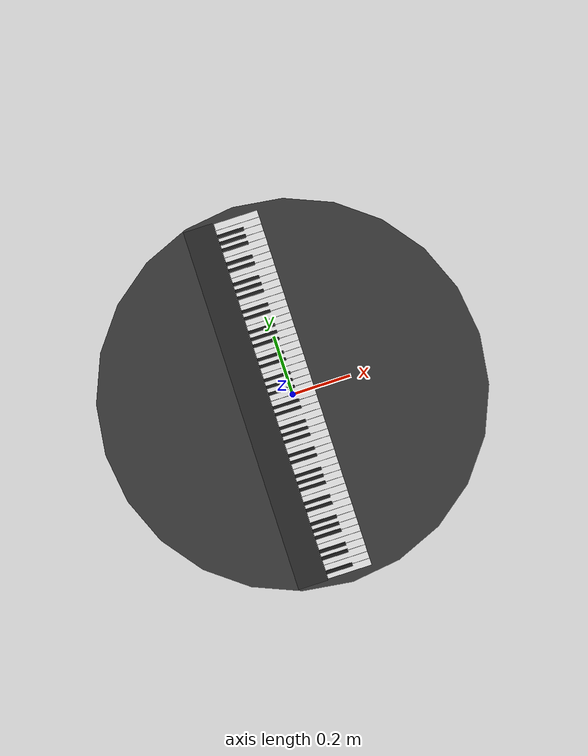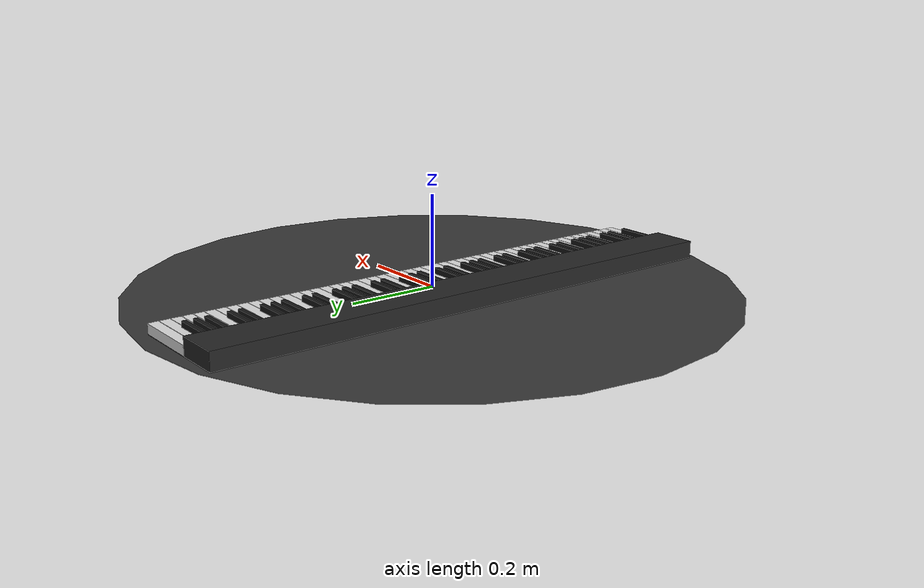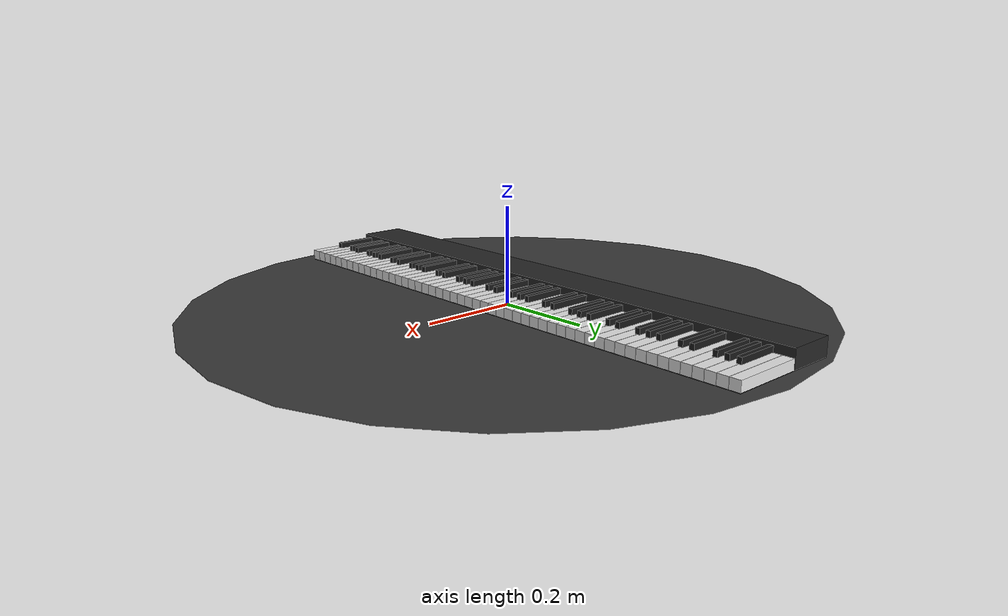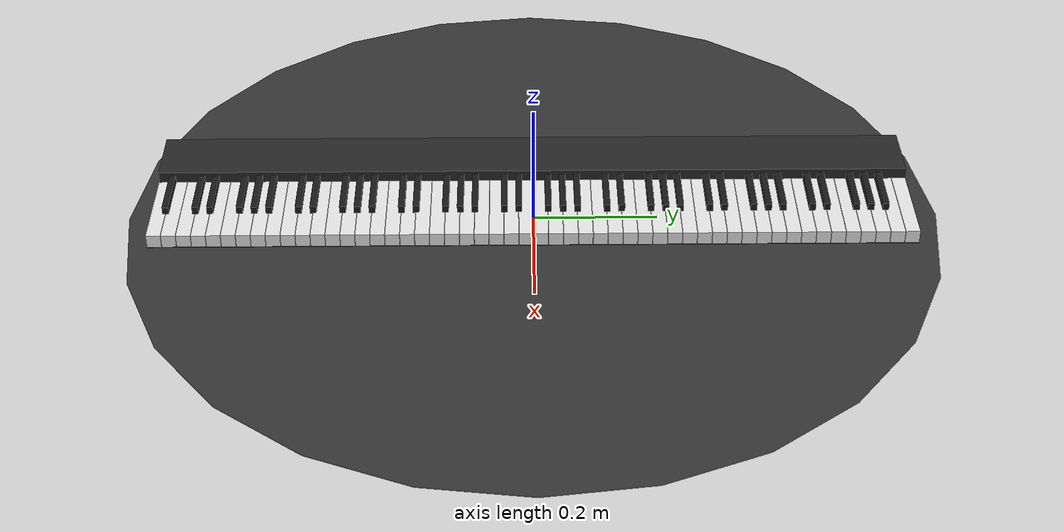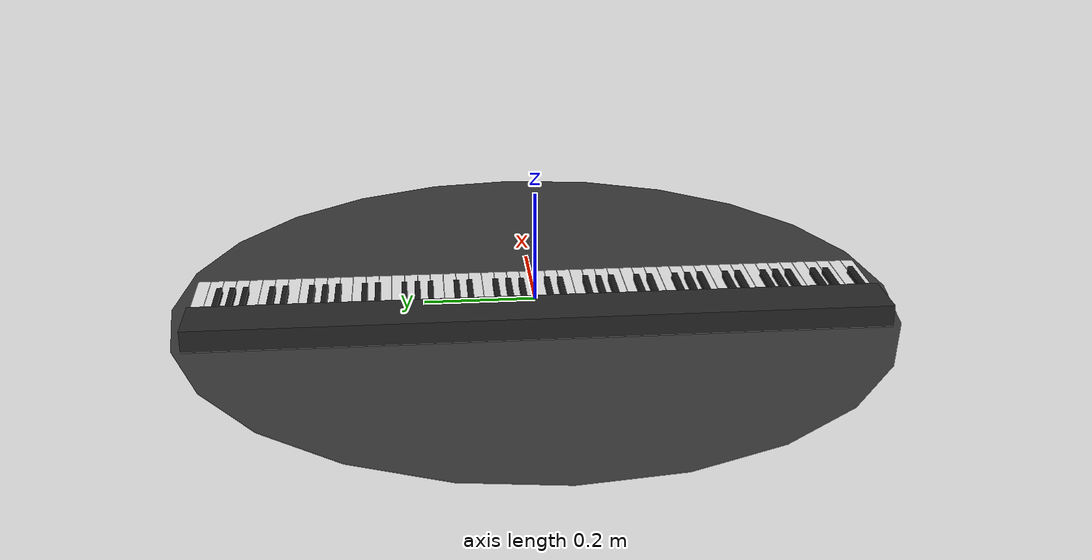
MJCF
<mujoco model="stage">
  <compiler autolimits="true" angle="radian"/>
  <option timestep="0.0050000000000000001"/>
  <visual>
    <global azimuth="180" elevation="-50"/>
    <map stiffness="400"/>
    <scale forcewidth="0.040000000000000001" contactwidth="0.20000000000000001" contactheight="0.029999999999999999"/>
  </visual>
  <statistic extent="0.59999999999999998" center="0.20000000000000001 0 0.29999999999999999"/>
  <default>
    <default class="/"/>
    <default class="piano/">
      <joint type="hinge" axis="0 1 0"/>
      <geom type="box" contype="0" conaffinity="1" solref="0.01 1"/>
      <site type="box" group="4" rgba="1 0 0 1"/>
      <general dyntype="none" gaintype="fixed" biastype="none" dynprm="1 0 0" gainprm="1 0 0" biasprm="0 0 0"/>
      <default class="piano/white_key">
        <joint pos="-0.074999999999999997 0 0" stiffness="2" range="0 0.066568163775823808" springref="-0.017453292519943295" armature="0.001" damping="0.050000000000000003"/>
        <geom size="0.074999999999999997 0.01125 0.01125" material="piano/white" mass="0.040000000000000001"/>
        <site size="0.074999999999999997 0.01125 0.01125"/>
        <general ctrlrange="0 0.066568163775823808"/>
      </default>
      <default class="piano/black_key">
        <joint pos="-0.044999999999999998 0 0" stiffness="2" range="0 0.088655881867437475" springref="-0.017453292519943295" armature="0.001" damping="0.050000000000000003"/>
        <geom size="0.044999999999999998 0.0050000000000000001 0.0089999999999999993" material="piano/black" mass="0.02"/>
        <site size="0.044999999999999998 0.0050000000000000001 0.0089999999999999993"/>
        <general ctrlrange="0 0.088655881867437475"/>
      </default>
    </default>
  </default>
  <asset>
    <texture name="skybox" type="skybox" builtin="gradient" rgb1="0.20000000000000001 0.20000000000000001 0.20000000000000001" rgb2="0 0 0" mark="random" markrgb="1 1 1" width="800" height="800"/>
    <material name="piano/white" class="piano/" rgba="0.90000000000000002 0.90000000000000002 0.90000000000000002 1"/>
    <material name="piano/black" class="piano/" rgba="0.10000000000000001 0.10000000000000001 0.10000000000000001 1"/>
  </asset>
  <worldbody>
    <light name="//unnamed_light_0" class="/" pos="0 0 1"/>
    <light name="//unnamed_light_1" class="/" directional="false" pos="0.29999999999999999 0 1" dir="0 0 -1"/>
    <geom name="//unnamed_geom_0" class="/" type="cylinder" contype="0" conaffinity="0" size="0.65000000000000002 0.001" rgba="0.10000000000000001 0.10000000000000001 0.10000000000000001 0.80000000000000004"/>
    <body name="piano/">
      <body name="piano/base" pos="-0.127 0 0.02">
        <geom name="piano//unnamed_geom_0" class="piano/" type="box" size="0.050000000000000003 0.61049999999999993 0.02" rgba="0.14999999999999999 0.14999999999999999 0.14999999999999999 1"/>
      </body>
      <body name="piano/white_key_0" pos="0 -0.59924999999999995 0.01125">
        <geom name="piano/white_key_geom_0" class="piano/white_key"/>
        <joint name="piano/white_joint_0" class="piano/white_key"/>
        <site name="piano/white_key_site_0" class="piano/white_key"/>
      </body>
      <body name="piano/black_key_1" pos="-0.029999999999999999 -0.58750000000000002 0.026000000000000002">
        <geom name="piano/black_key_geom_1" class="piano/black_key"/>
        <joint name="piano/black_joint_1" class="piano/black_key"/>
        <site name="piano/black_key_site_1" class="piano/black_key"/>
      </body>
      <body name="piano/white_key_2" pos="0 -0.57574999999999998 0.01125">
        <geom name="piano/white_key_geom_2" class="piano/white_key"/>
        <joint name="piano/white_joint_2" class="piano/white_key"/>
        <site name="piano/white_key_site_2" class="piano/white_key"/>
      </body>
      <body name="piano/white_key_3" pos="0 -0.55224999999999991 0.01125">
        <geom name="piano/white_key_geom_3" class="piano/white_key"/>
        <joint name="piano/white_joint_3" class="piano/white_key"/>
        <site name="piano/white_key_site_3" class="piano/white_key"/>
      </body>
      <body name="piano/black_key_4" pos="-0.029999999999999999 -0.53999999999999992 0.026000000000000002">
        <geom name="piano/black_key_geom_4" class="piano/black_key"/>
        <joint name="piano/black_joint_4" class="piano/black_key"/>
        <site name="piano/black_key_site_4" class="piano/black_key"/>
      </body>
      <body name="piano/white_key_5" pos="0 -0.52874999999999994 0.01125">
        <geom name="piano/white_key_geom_5" class="piano/white_key"/>
        <joint name="piano/white_joint_5" class="piano/white_key"/>
        <site name="piano/white_key_site_5" class="piano/white_key"/>
      </body>
      <body name="piano/black_key_6" pos="-0.029999999999999999 -0.51649999999999985 0.026000000000000002">
        <geom name="piano/black_key_geom_6" class="piano/black_key"/>
        <joint name="piano/black_joint_6" class="piano/black_key"/>
        <site name="piano/black_key_site_6" class="piano/black_key"/>
      </body>
      <body name="piano/white_key_7" pos="0 -0.50524999999999998 0.01125">
        <geom name="piano/white_key_geom_7" class="piano/white_key"/>
        <joint name="piano/white_joint_7" class="piano/white_key"/>
        <site name="piano/white_key_site_7" class="piano/white_key"/>
      </body>
      <body name="piano/white_key_8" pos="0 -0.48174999999999996 0.01125">
        <geom name="piano/white_key_geom_8" class="piano/white_key"/>
        <joint name="piano/white_joint_8" class="piano/white_key"/>
        <site name="piano/white_key_site_8" class="piano/white_key"/>
      </body>
      <body name="piano/black_key_9" pos="-0.029999999999999999 -0.46949999999999997 0.026000000000000002">
        <geom name="piano/black_key_geom_9" class="piano/black_key"/>
        <joint name="piano/black_joint_9" class="piano/black_key"/>
        <site name="piano/black_key_site_9" class="piano/black_key"/>
      </body>
      <body name="piano/white_key_10" pos="0 -0.45824999999999994 0.01125">
        <geom name="piano/white_key_geom_10" class="piano/white_key"/>
        <joint name="piano/white_joint_10" class="piano/white_key"/>
        <site name="piano/white_key_site_10" class="piano/white_key"/>
      </body>
      <body name="piano/black_key_11" pos="-0.029999999999999999 -0.4459999999999999 0.026000000000000002">
        <geom name="piano/black_key_geom_11" class="piano/black_key"/>
        <joint name="piano/black_joint_11" class="piano/black_key"/>
        <site name="piano/black_key_site_11" class="piano/black_key"/>
      </body>
      <body name="piano/white_key_12" pos="0 -0.43474999999999997 0.01125">
        <geom name="piano/white_key_geom_12" class="piano/white_key"/>
        <joint name="piano/white_joint_12" class="piano/white_key"/>
        <site name="piano/white_key_site_12" class="piano/white_key"/>
      </body>
      <body name="piano/black_key_13" pos="-0.029999999999999999 -0.42249999999999993 0.026000000000000002">
        <geom name="piano/black_key_geom_13" class="piano/black_key"/>
        <joint name="piano/black_joint_13" class="piano/black_key"/>
        <site name="piano/black_key_site_13" class="piano/black_key"/>
      </body>
      <body name="piano/white_key_14" pos="0 -0.41124999999999995 0.01125">
        <geom name="piano/white_key_geom_14" class="piano/white_key"/>
        <joint name="piano/white_joint_14" class="piano/white_key"/>
        <site name="piano/white_key_site_14" class="piano/white_key"/>
      </body>
      <body name="piano/white_key_15" pos="0 -0.38774999999999993 0.01125">
        <geom name="piano/white_key_geom_15" class="piano/white_key"/>
        <joint name="piano/white_joint_15" class="piano/white_key"/>
        <site name="piano/white_key_site_15" class="piano/white_key"/>
      </body>
      <body name="piano/black_key_16" pos="-0.029999999999999999 -0.37549999999999994 0.026000000000000002">
        <geom name="piano/black_key_geom_16" class="piano/black_key"/>
        <joint name="piano/black_joint_16" class="piano/black_key"/>
        <site name="piano/black_key_site_16" class="piano/black_key"/>
      </body>
      <body name="piano/white_key_17" pos="0 -0.36424999999999996 0.01125">
        <geom name="piano/white_key_geom_17" class="piano/white_key"/>
        <joint name="piano/white_joint_17" class="piano/white_key"/>
        <site name="piano/white_key_site_17" class="piano/white_key"/>
      </body>
      <body name="piano/black_key_18" pos="-0.029999999999999999 -0.35199999999999987 0.026000000000000002">
        <geom name="piano/black_key_geom_18" class="piano/black_key"/>
        <joint name="piano/black_joint_18" class="piano/black_key"/>
        <site name="piano/black_key_site_18" class="piano/black_key"/>
      </body>
      <body name="piano/white_key_19" pos="0 -0.34074999999999994 0.01125">
        <geom name="piano/white_key_geom_19" class="piano/white_key"/>
        <joint name="piano/white_joint_19" class="piano/white_key"/>
        <site name="piano/white_key_site_19" class="piano/white_key"/>
      </body>
      <body name="piano/white_key_20" pos="0 -0.31724999999999992 0.01125">
        <geom name="piano/white_key_geom_20" class="piano/white_key"/>
        <joint name="piano/white_joint_20" class="piano/white_key"/>
        <site name="piano/white_key_site_20" class="piano/white_key"/>
      </body>
      <body name="piano/black_key_21" pos="-0.029999999999999999 -0.30499999999999994 0.026000000000000002">
        <geom name="piano/black_key_geom_21" class="piano/black_key"/>
        <joint name="piano/black_joint_21" class="piano/black_key"/>
        <site name="piano/black_key_site_21" class="piano/black_key"/>
      </body>
      <body name="piano/white_key_22" pos="0 -0.29374999999999996 0.01125">
        <geom name="piano/white_key_geom_22" class="piano/white_key"/>
        <joint name="piano/white_joint_22" class="piano/white_key"/>
        <site name="piano/white_key_site_22" class="piano/white_key"/>
      </body>
      <body name="piano/black_key_23" pos="-0.029999999999999999 -0.28149999999999986 0.026000000000000002">
        <geom name="piano/black_key_geom_23" class="piano/black_key"/>
        <joint name="piano/black_joint_23" class="piano/black_key"/>
        <site name="piano/black_key_site_23" class="piano/black_key"/>
      </body>
      <body name="piano/white_key_24" pos="0 -0.27024999999999993 0.01125">
        <geom name="piano/white_key_geom_24" class="piano/white_key"/>
        <joint name="piano/white_joint_24" class="piano/white_key"/>
        <site name="piano/white_key_site_24" class="piano/white_key"/>
      </body>
      <body name="piano/black_key_25" pos="-0.029999999999999999 -0.2579999999999999 0.026000000000000002">
        <geom name="piano/black_key_geom_25" class="piano/black_key"/>
        <joint name="piano/black_joint_25" class="piano/black_key"/>
        <site name="piano/black_key_site_25" class="piano/black_key"/>
      </body>
      <body name="piano/white_key_26" pos="0 -0.24674999999999997 0.01125">
        <geom name="piano/white_key_geom_26" class="piano/white_key"/>
        <joint name="piano/white_joint_26" class="piano/white_key"/>
        <site name="piano/white_key_site_26" class="piano/white_key"/>
      </body>
      <body name="piano/white_key_27" pos="0 -0.22324999999999995 0.01125">
        <geom name="piano/white_key_geom_27" class="piano/white_key"/>
        <joint name="piano/white_joint_27" class="piano/white_key"/>
        <site name="piano/white_key_site_27" class="piano/white_key"/>
      </body>
      <body name="piano/black_key_28" pos="-0.029999999999999999 -0.21099999999999997 0.026000000000000002">
        <geom name="piano/black_key_geom_28" class="piano/black_key"/>
        <joint name="piano/black_joint_28" class="piano/black_key"/>
        <site name="piano/black_key_site_28" class="piano/black_key"/>
      </body>
      <body name="piano/white_key_29" pos="0 -0.19974999999999993 0.01125">
        <geom name="piano/white_key_geom_29" class="piano/white_key"/>
        <joint name="piano/white_joint_29" class="piano/white_key"/>
        <site name="piano/white_key_site_29" class="piano/white_key"/>
      </body>
      <body name="piano/black_key_30" pos="-0.029999999999999999 -0.18749999999999989 0.026000000000000002">
        <geom name="piano/black_key_geom_30" class="piano/black_key"/>
        <joint name="piano/black_joint_30" class="piano/black_key"/>
        <site name="piano/black_key_site_30" class="piano/black_key"/>
      </body>
      <body name="piano/white_key_31" pos="0 -0.17624999999999996 0.01125">
        <geom name="piano/white_key_geom_31" class="piano/white_key"/>
        <joint name="piano/white_joint_31" class="piano/white_key"/>
        <site name="piano/white_key_site_31" class="piano/white_key"/>
      </body>
      <body name="piano/white_key_32" pos="0 -0.15274999999999994 0.01125">
        <geom name="piano/white_key_geom_32" class="piano/white_key"/>
        <joint name="piano/white_joint_32" class="piano/white_key"/>
        <site name="piano/white_key_site_32" class="piano/white_key"/>
      </body>
      <body name="piano/black_key_33" pos="-0.029999999999999999 -0.14049999999999996 0.026000000000000002">
        <geom name="piano/black_key_geom_33" class="piano/black_key"/>
        <joint name="piano/black_joint_33" class="piano/black_key"/>
        <site name="piano/black_key_site_33" class="piano/black_key"/>
      </body>
      <body name="piano/white_key_34" pos="0 -0.12924999999999998 0.01125">
        <geom name="piano/white_key_geom_34" class="piano/white_key"/>
        <joint name="piano/white_joint_34" class="piano/white_key"/>
        <site name="piano/white_key_site_34" class="piano/white_key"/>
      </body>
      <body name="piano/black_key_35" pos="-0.029999999999999999 -0.11699999999999988 0.026000000000000002">
        <geom name="piano/black_key_geom_35" class="piano/black_key"/>
        <joint name="piano/black_joint_35" class="piano/black_key"/>
        <site name="piano/black_key_site_35" class="piano/black_key"/>
      </body>
      <body name="piano/white_key_36" pos="0 -0.10574999999999996 0.01125">
        <geom name="piano/white_key_geom_36" class="piano/white_key"/>
        <joint name="piano/white_joint_36" class="piano/white_key"/>
        <site name="piano/white_key_site_36" class="piano/white_key"/>
      </body>
      <body name="piano/black_key_37" pos="-0.029999999999999999 -0.093499999999999917 0.026000000000000002">
        <geom name="piano/black_key_geom_37" class="piano/black_key"/>
        <joint name="piano/black_joint_37" class="piano/black_key"/>
        <site name="piano/black_key_site_37" class="piano/black_key"/>
      </body>
      <body name="piano/white_key_38" pos="0 -0.082249999999999934 0.01125">
        <geom name="piano/white_key_geom_38" class="piano/white_key"/>
        <joint name="piano/white_joint_38" class="piano/white_key"/>
        <site name="piano/white_key_site_38" class="piano/white_key"/>
      </body>
      <body name="piano/white_key_39" pos="0 -0.058749999999999969 0.01125">
        <geom name="piano/white_key_geom_39" class="piano/white_key"/>
        <joint name="piano/white_joint_39" class="piano/white_key"/>
        <site name="piano/white_key_site_39" class="piano/white_key"/>
      </body>
      <body name="piano/black_key_40" pos="-0.029999999999999999 -0.046499999999999986 0.026000000000000002">
        <geom name="piano/black_key_geom_40" class="piano/black_key"/>
        <joint name="piano/black_joint_40" class="piano/black_key"/>
        <site name="piano/black_key_site_40" class="piano/black_key"/>
      </body>
      <body name="piano/white_key_41" pos="0 -0.035249999999999893 0.01125">
        <geom name="piano/white_key_geom_41" class="piano/white_key"/>
        <joint name="piano/white_joint_41" class="piano/white_key"/>
        <site name="piano/white_key_site_41" class="piano/white_key"/>
      </body>
      <body name="piano/black_key_42" pos="-0.029999999999999999 -0.022999999999999909 0.026000000000000002">
        <geom name="piano/black_key_geom_42" class="piano/black_key"/>
        <joint name="piano/black_joint_42" class="piano/black_key"/>
        <site name="piano/black_key_site_42" class="piano/black_key"/>
      </body>
      <body name="piano/white_key_43" pos="0 -0.011749999999999927 0.01125">
        <geom name="piano/white_key_geom_43" class="piano/white_key"/>
        <joint name="piano/white_joint_43" class="piano/white_key"/>
        <site name="piano/white_key_site_43" class="piano/white_key"/>
      </body>
      <body name="piano/white_key_44" pos="0 0.011750000000000038 0.01125">
        <geom name="piano/white_key_geom_44" class="piano/white_key"/>
        <joint name="piano/white_joint_44" class="piano/white_key"/>
        <site name="piano/white_key_site_44" class="piano/white_key"/>
      </body>
      <body name="piano/black_key_45" pos="-0.029999999999999999 0.024000000000000021 0.026000000000000002">
        <geom name="piano/black_key_geom_45" class="piano/black_key"/>
        <joint name="piano/black_joint_45" class="piano/black_key"/>
        <site name="piano/black_key_site_45" class="piano/black_key"/>
      </body>
      <body name="piano/white_key_46" pos="0 0.035250000000000004 0.01125">
        <geom name="piano/white_key_geom_46" class="piano/white_key"/>
        <joint name="piano/white_joint_46" class="piano/white_key"/>
        <site name="piano/white_key_site_46" class="piano/white_key"/>
      </body>
      <body name="piano/black_key_47" pos="-0.029999999999999999 0.047500000000000098 0.026000000000000002">
        <geom name="piano/black_key_geom_47" class="piano/black_key"/>
        <joint name="piano/black_joint_47" class="piano/black_key"/>
        <site name="piano/black_key_site_47" class="piano/black_key"/>
      </body>
      <body name="piano/white_key_48" pos="0 0.05875000000000008 0.01125">
        <geom name="piano/white_key_geom_48" class="piano/white_key"/>
        <joint name="piano/white_joint_48" class="piano/white_key"/>
        <site name="piano/white_key_site_48" class="piano/white_key"/>
      </body>
      <body name="piano/black_key_49" pos="-0.029999999999999999 0.071000000000000063 0.026000000000000002">
        <geom name="piano/black_key_geom_49" class="piano/black_key"/>
        <joint name="piano/black_joint_49" class="piano/black_key"/>
        <site name="piano/black_key_site_49" class="piano/black_key"/>
      </body>
      <body name="piano/white_key_50" pos="0 0.082250000000000045 0.01125">
        <geom name="piano/white_key_geom_50" class="piano/white_key"/>
        <joint name="piano/white_joint_50" class="piano/white_key"/>
        <site name="piano/white_key_site_50" class="piano/white_key"/>
      </body>
      <body name="piano/white_key_51" pos="0 0.10575000000000001 0.01125">
        <geom name="piano/white_key_geom_51" class="piano/white_key"/>
        <joint name="piano/white_joint_51" class="piano/white_key"/>
        <site name="piano/white_key_site_51" class="piano/white_key"/>
      </body>
      <body name="piano/black_key_52" pos="-0.029999999999999999 0.11799999999999999 0.026000000000000002">
        <geom name="piano/black_key_geom_52" class="piano/black_key"/>
        <joint name="piano/black_joint_52" class="piano/black_key"/>
        <site name="piano/black_key_site_52" class="piano/black_key"/>
      </body>
      <body name="piano/white_key_53" pos="0 0.12925000000000009 0.01125">
        <geom name="piano/white_key_geom_53" class="piano/white_key"/>
        <joint name="piano/white_joint_53" class="piano/white_key"/>
        <site name="piano/white_key_site_53" class="piano/white_key"/>
      </body>
      <body name="piano/black_key_54" pos="-0.029999999999999999 0.14150000000000007 0.026000000000000002">
        <geom name="piano/black_key_geom_54" class="piano/black_key"/>
        <joint name="piano/black_joint_54" class="piano/black_key"/>
        <site name="piano/black_key_site_54" class="piano/black_key"/>
      </body>
      <body name="piano/white_key_55" pos="0 0.15275000000000005 0.01125">
        <geom name="piano/white_key_geom_55" class="piano/white_key"/>
        <joint name="piano/white_joint_55" class="piano/white_key"/>
        <site name="piano/white_key_site_55" class="piano/white_key"/>
      </body>
      <body name="piano/white_key_56" pos="0 0.17625000000000002 0.01125">
        <geom name="piano/white_key_geom_56" class="piano/white_key"/>
        <joint name="piano/white_joint_56" class="piano/white_key"/>
        <site name="piano/white_key_site_56" class="piano/white_key"/>
      </body>
      <body name="piano/black_key_57" pos="-0.029999999999999999 0.1885 0.026000000000000002">
        <geom name="piano/black_key_geom_57" class="piano/black_key"/>
        <joint name="piano/black_joint_57" class="piano/black_key"/>
        <site name="piano/black_key_site_57" class="piano/black_key"/>
      </body>
      <body name="piano/white_key_58" pos="0 0.19975000000000009 0.01125">
        <geom name="piano/white_key_geom_58" class="piano/white_key"/>
        <joint name="piano/white_joint_58" class="piano/white_key"/>
        <site name="piano/white_key_site_58" class="piano/white_key"/>
      </body>
      <body name="piano/black_key_59" pos="-0.029999999999999999 0.21200000000000008 0.026000000000000002">
        <geom name="piano/black_key_geom_59" class="piano/black_key"/>
        <joint name="piano/black_joint_59" class="piano/black_key"/>
        <site name="piano/black_key_site_59" class="piano/black_key"/>
      </body>
      <body name="piano/white_key_60" pos="0 0.22325000000000006 0.01125">
        <geom name="piano/white_key_geom_60" class="piano/white_key"/>
        <joint name="piano/white_joint_60" class="piano/white_key"/>
        <site name="piano/white_key_site_60" class="piano/white_key"/>
      </body>
      <body name="piano/black_key_61" pos="-0.029999999999999999 0.23550000000000004 0.026000000000000002">
        <geom name="piano/black_key_geom_61" class="piano/black_key"/>
        <joint name="piano/black_joint_61" class="piano/black_key"/>
        <site name="piano/black_key_site_61" class="piano/black_key"/>
      </body>
      <body name="piano/white_key_62" pos="0 0.24675000000000002 0.01125">
        <geom name="piano/white_key_geom_62" class="piano/white_key"/>
        <joint name="piano/white_joint_62" class="piano/white_key"/>
        <site name="piano/white_key_site_62" class="piano/white_key"/>
      </body>
      <body name="piano/white_key_63" pos="0 0.2702500000000001 0.01125">
        <geom name="piano/white_key_geom_63" class="piano/white_key"/>
        <joint name="piano/white_joint_63" class="piano/white_key"/>
        <site name="piano/white_key_site_63" class="piano/white_key"/>
      </body>
      <body name="piano/black_key_64" pos="-0.029999999999999999 0.28250000000000008 0.026000000000000002">
        <geom name="piano/black_key_geom_64" class="piano/black_key"/>
        <joint name="piano/black_joint_64" class="piano/black_key"/>
        <site name="piano/black_key_site_64" class="piano/black_key"/>
      </body>
      <body name="piano/white_key_65" pos="0 0.29375000000000007 0.01125">
        <geom name="piano/white_key_geom_65" class="piano/white_key"/>
        <joint name="piano/white_joint_65" class="piano/white_key"/>
        <site name="piano/white_key_site_65" class="piano/white_key"/>
      </body>
      <body name="piano/black_key_66" pos="-0.029999999999999999 0.30600000000000016 0.026000000000000002">
        <geom name="piano/black_key_geom_66" class="piano/black_key"/>
        <joint name="piano/black_joint_66" class="piano/black_key"/>
        <site name="piano/black_key_site_66" class="piano/black_key"/>
      </body>
      <body name="piano/white_key_67" pos="0 0.31725000000000003 0.01125">
        <geom name="piano/white_key_geom_67" class="piano/white_key"/>
        <joint name="piano/white_joint_67" class="piano/white_key"/>
        <site name="piano/white_key_site_67" class="piano/white_key"/>
      </body>
      <body name="piano/white_key_68" pos="0 0.34075 0.01125">
        <geom name="piano/white_key_geom_68" class="piano/white_key"/>
        <joint name="piano/white_joint_68" class="piano/white_key"/>
        <site name="piano/white_key_site_68" class="piano/white_key"/>
      </body>
      <body name="piano/black_key_69" pos="-0.029999999999999999 0.35299999999999998 0.026000000000000002">
        <geom name="piano/black_key_geom_69" class="piano/black_key"/>
        <joint name="piano/black_joint_69" class="piano/black_key"/>
        <site name="piano/black_key_site_69" class="piano/black_key"/>
      </body>
      <body name="piano/white_key_70" pos="0 0.36425000000000007 0.01125">
        <geom name="piano/white_key_geom_70" class="piano/white_key"/>
        <joint name="piano/white_joint_70" class="piano/white_key"/>
        <site name="piano/white_key_site_70" class="piano/white_key"/>
      </body>
      <body name="piano/black_key_71" pos="-0.029999999999999999 0.37650000000000006 0.026000000000000002">
        <geom name="piano/black_key_geom_71" class="piano/black_key"/>
        <joint name="piano/black_joint_71" class="piano/black_key"/>
        <site name="piano/black_key_site_71" class="piano/black_key"/>
      </body>
      <body name="piano/white_key_72" pos="0 0.38775000000000004 0.01125">
        <geom name="piano/white_key_geom_72" class="piano/white_key"/>
        <joint name="piano/white_joint_72" class="piano/white_key"/>
        <site name="piano/white_key_site_72" class="piano/white_key"/>
      </body>
      <body name="piano/black_key_73" pos="-0.029999999999999999 0.40000000000000002 0.026000000000000002">
        <geom name="piano/black_key_geom_73" class="piano/black_key"/>
        <joint name="piano/black_joint_73" class="piano/black_key"/>
        <site name="piano/black_key_site_73" class="piano/black_key"/>
      </body>
      <body name="piano/white_key_74" pos="0 0.41125 0.01125">
        <geom name="piano/white_key_geom_74" class="piano/white_key"/>
        <joint name="piano/white_joint_74" class="piano/white_key"/>
        <site name="piano/white_key_site_74" class="piano/white_key"/>
      </body>
      <body name="piano/white_key_75" pos="0 0.43475000000000008 0.01125">
        <geom name="piano/white_key_geom_75" class="piano/white_key"/>
        <joint name="piano/white_joint_75" class="piano/white_key"/>
        <site name="piano/white_key_site_75" class="piano/white_key"/>
      </body>
      <body name="piano/black_key_76" pos="-0.029999999999999999 0.44700000000000006 0.026000000000000002">
        <geom name="piano/black_key_geom_76" class="piano/black_key"/>
        <joint name="piano/black_joint_76" class="piano/black_key"/>
        <site name="piano/black_key_site_76" class="piano/black_key"/>
      </body>
      <body name="piano/white_key_77" pos="0 0.45825000000000016 0.01125">
        <geom name="piano/white_key_geom_77" class="piano/white_key"/>
        <joint name="piano/white_joint_77" class="piano/white_key"/>
        <site name="piano/white_key_site_77" class="piano/white_key"/>
      </body>
      <body name="piano/black_key_78" pos="-0.029999999999999999 0.47050000000000014 0.026000000000000002">
        <geom name="piano/black_key_geom_78" class="piano/black_key"/>
        <joint name="piano/black_joint_78" class="piano/black_key"/>
        <site name="piano/black_key_site_78" class="piano/black_key"/>
      </body>
      <body name="piano/white_key_79" pos="0 0.48175000000000001 0.01125">
        <geom name="piano/white_key_geom_79" class="piano/white_key"/>
        <joint name="piano/white_joint_79" class="piano/white_key"/>
        <site name="piano/white_key_site_79" class="piano/white_key"/>
      </body>
      <body name="piano/white_key_80" pos="0 0.50525000000000009 0.01125">
        <geom name="piano/white_key_geom_80" class="piano/white_key"/>
        <joint name="piano/white_joint_80" class="piano/white_key"/>
        <site name="piano/white_key_site_80" class="piano/white_key"/>
      </body>
      <body name="piano/black_key_81" pos="-0.029999999999999999 0.51750000000000007 0.026000000000000002">
        <geom name="piano/black_key_geom_81" class="piano/black_key"/>
        <joint name="piano/black_joint_81" class="piano/black_key"/>
        <site name="piano/black_key_site_81" class="piano/black_key"/>
      </body>
      <body name="piano/white_key_82" pos="0 0.52875000000000016 0.01125">
        <geom name="piano/white_key_geom_82" class="piano/white_key"/>
        <joint name="piano/white_joint_82" class="piano/white_key"/>
        <site name="piano/white_key_site_82" class="piano/white_key"/>
      </body>
      <body name="piano/black_key_83" pos="-0.029999999999999999 0.54100000000000015 0.026000000000000002">
        <geom name="piano/black_key_geom_83" class="piano/black_key"/>
        <joint name="piano/black_joint_83" class="piano/black_key"/>
        <site name="piano/black_key_site_83" class="piano/black_key"/>
      </body>
      <body name="piano/white_key_84" pos="0 0.55225000000000002 0.01125">
        <geom name="piano/white_key_geom_84" class="piano/white_key"/>
        <joint name="piano/white_joint_84" class="piano/white_key"/>
        <site name="piano/white_key_site_84" class="piano/white_key"/>
      </body>
      <body name="piano/black_key_85" pos="-0.029999999999999999 0.56450000000000011 0.026000000000000002">
        <geom name="piano/black_key_geom_85" class="piano/black_key"/>
        <joint name="piano/black_joint_85" class="piano/black_key"/>
        <site name="piano/black_key_site_85" class="piano/black_key"/>
      </body>
      <body name="piano/white_key_86" pos="0 0.5757500000000001 0.01125">
        <geom name="piano/white_key_geom_86" class="piano/white_key"/>
        <joint name="piano/white_joint_86" class="piano/white_key"/>
        <site name="piano/white_key_site_86" class="piano/white_key"/>
      </body>
      <body name="piano/white_key_87" pos="0 0.59924999999999995 0.01125">
        <geom name="piano/white_key_geom_87" class="piano/white_key"/>
        <joint name="piano/white_joint_87" class="piano/white_key"/>
        <site name="piano/white_key_site_87" class="piano/white_key"/>
      </body>
      <camera name="piano/closeup" class="piano/" pos="-0.313 0.024 0.45500000000000002" xyaxes="0.0030000000000000001 -1 -0 0.60699999999999998 0.002 0.79500000000000004"/>
      <camera name="piano/left" class="piano/" pos="0.39300000000000002 -0.79100000000000004 0.63800000000000001" xyaxes="0.80800000000000005 0.58899999999999997 0 -0.38800000000000001 0.53300000000000003 0.752"/>
      <camera name="piano/right" class="piano/" pos="0.47199999999999998 0.59799999999999998 0.57999999999999996" xyaxes="-0.63700000000000001 0.77100000000000002 -0 -0.51000000000000001 -0.42099999999999999 0.75"/>
      <camera name="piano/back" class="piano/" pos="-0.56899999999999995 0.0080000000000000002 0.84099999999999997" xyaxes="-0.0089999999999999993 -1 0 0.78300000000000003 -0.0070000000000000001 0.622"/>
      <camera name="piano/egocentric" class="piano/" pos="0.41699999999999998 -0.039 0.71699999999999997" xyaxes="-0.002 1 0 -0.86699999999999999 -0.002 0.498"/>
      <camera name="piano/topdown" class="piano/" fovy="33.9496196739872" pos="0 0 1" quat="1 0 0 1"/>
    </body>
  </worldbody>
  <actuator>
    <general name="piano/white_actuator_0" class="piano/white_key" joint="piano/white_joint_0"/>
    <general name="piano/black_actuator_1" class="piano/black_key" joint="piano/black_joint_1"/>
    <general name="piano/white_actuator_2" class="piano/white_key" joint="piano/white_joint_2"/>
    <general name="piano/white_actuator_3" class="piano/white_key" joint="piano/white_joint_3"/>
    <general name="piano/black_actuator_4" class="piano/black_key" joint="piano/black_joint_4"/>
    <general name="piano/white_actuator_5" class="piano/white_key" joint="piano/white_joint_5"/>
    <general name="piano/black_actuator_6" class="piano/black_key" joint="piano/black_joint_6"/>
    <general name="piano/white_actuator_7" class="piano/white_key" joint="piano/white_joint_7"/>
    <general name="piano/white_actuator_8" class="piano/white_key" joint="piano/white_joint_8"/>
    <general name="piano/black_actuator_9" class="piano/black_key" joint="piano/black_joint_9"/>
    <general name="piano/white_actuator_10" class="piano/white_key" joint="piano/white_joint_10"/>
    <general name="piano/black_actuator_11" class="piano/black_key" joint="piano/black_joint_11"/>
    <general name="piano/white_actuator_12" class="piano/white_key" joint="piano/white_joint_12"/>
    <general name="piano/black_actuator_13" class="piano/black_key" joint="piano/black_joint_13"/>
    <general name="piano/white_actuator_14" class="piano/white_key" joint="piano/white_joint_14"/>
    <general name="piano/white_actuator_15" class="piano/white_key" joint="piano/white_joint_15"/>
    <general name="piano/black_actuator_16" class="piano/black_key" joint="piano/black_joint_16"/>
    <general name="piano/white_actuator_17" class="piano/white_key" joint="piano/white_joint_17"/>
    <general name="piano/black_actuator_18" class="piano/black_key" joint="piano/black_joint_18"/>
    <general name="piano/white_actuator_19" class="piano/white_key" joint="piano/white_joint_19"/>
    <general name="piano/white_actuator_20" class="piano/white_key" joint="piano/white_joint_20"/>
    <general name="piano/black_actuator_21" class="piano/black_key" joint="piano/black_joint_21"/>
    <general name="piano/white_actuator_22" class="piano/white_key" joint="piano/white_joint_22"/>
    <general name="piano/black_actuator_23" class="piano/black_key" joint="piano/black_joint_23"/>
    <general name="piano/white_actuator_24" class="piano/white_key" joint="piano/white_joint_24"/>
    <general name="piano/black_actuator_25" class="piano/black_key" joint="piano/black_joint_25"/>
    <general name="piano/white_actuator_26" class="piano/white_key" joint="piano/white_joint_26"/>
    <general name="piano/white_actuator_27" class="piano/white_key" joint="piano/white_joint_27"/>
    <general name="piano/black_actuator_28" class="piano/black_key" joint="piano/black_joint_28"/>
    <general name="piano/white_actuator_29" class="piano/white_key" joint="piano/white_joint_29"/>
    <general name="piano/black_actuator_30" class="piano/black_key" joint="piano/black_joint_30"/>
    <general name="piano/white_actuator_31" class="piano/white_key" joint="piano/white_joint_31"/>
    <general name="piano/white_actuator_32" class="piano/white_key" joint="piano/white_joint_32"/>
    <general name="piano/black_actuator_33" class="piano/black_key" joint="piano/black_joint_33"/>
    <general name="piano/white_actuator_34" class="piano/white_key" joint="piano/white_joint_34"/>
    <general name="piano/black_actuator_35" class="piano/black_key" joint="piano/black_joint_35"/>
    <general name="piano/white_actuator_36" class="piano/white_key" joint="piano/white_joint_36"/>
    <general name="piano/black_actuator_37" class="piano/black_key" joint="piano/black_joint_37"/>
    <general name="piano/white_actuator_38" class="piano/white_key" joint="piano/white_joint_38"/>
    <general name="piano/white_actuator_39" class="piano/white_key" joint="piano/white_joint_39"/>
    <general name="piano/black_actuator_40" class="piano/black_key" joint="piano/black_joint_40"/>
    <general name="piano/white_actuator_41" class="piano/white_key" joint="piano/white_joint_41"/>
    <general name="piano/black_actuator_42" class="piano/black_key" joint="piano/black_joint_42"/>
    <general name="piano/white_actuator_43" class="piano/white_key" joint="piano/white_joint_43"/>
    <general name="piano/white_actuator_44" class="piano/white_key" joint="piano/white_joint_44"/>
    <general name="piano/black_actuator_45" class="piano/black_key" joint="piano/black_joint_45"/>
    <general name="piano/white_actuator_46" class="piano/white_key" joint="piano/white_joint_46"/>
    <general name="piano/black_actuator_47" class="piano/black_key" joint="piano/black_joint_47"/>
    <general name="piano/white_actuator_48" class="piano/white_key" joint="piano/white_joint_48"/>
    <general name="piano/black_actuator_49" class="piano/black_key" joint="piano/black_joint_49"/>
    <general name="piano/white_actuator_50" class="piano/white_key" joint="piano/white_joint_50"/>
    <general name="piano/white_actuator_51" class="piano/white_key" joint="piano/white_joint_51"/>
    <general name="piano/black_actuator_52" class="piano/black_key" joint="piano/black_joint_52"/>
    <general name="piano/white_actuator_53" class="piano/white_key" joint="piano/white_joint_53"/>
    <general name="piano/black_actuator_54" class="piano/black_key" joint="piano/black_joint_54"/>
    <general name="piano/white_actuator_55" class="piano/white_key" joint="piano/white_joint_55"/>
    <general name="piano/white_actuator_56" class="piano/white_key" joint="piano/white_joint_56"/>
    <general name="piano/black_actuator_57" class="piano/black_key" joint="piano/black_joint_57"/>
    <general name="piano/white_actuator_58" class="piano/white_key" joint="piano/white_joint_58"/>
    <general name="piano/black_actuator_59" class="piano/black_key" joint="piano/black_joint_59"/>
    <general name="piano/white_actuator_60" class="piano/white_key" joint="piano/white_joint_60"/>
    <general name="piano/black_actuator_61" class="piano/black_key" joint="piano/black_joint_61"/>
    <general name="piano/white_actuator_62" class="piano/white_key" joint="piano/white_joint_62"/>
    <general name="piano/white_actuator_63" class="piano/white_key" joint="piano/white_joint_63"/>
    <general name="piano/black_actuator_64" class="piano/black_key" joint="piano/black_joint_64"/>
    <general name="piano/white_actuator_65" class="piano/white_key" joint="piano/white_joint_65"/>
    <general name="piano/black_actuator_66" class="piano/black_key" joint="piano/black_joint_66"/>
    <general name="piano/white_actuator_67" class="piano/white_key" joint="piano/white_joint_67"/>
    <general name="piano/white_actuator_68" class="piano/white_key" joint="piano/white_joint_68"/>
    <general name="piano/black_actuator_69" class="piano/black_key" joint="piano/black_joint_69"/>
    <general name="piano/white_actuator_70" class="piano/white_key" joint="piano/white_joint_70"/>
    <general name="piano/black_actuator_71" class="piano/black_key" joint="piano/black_joint_71"/>
    <general name="piano/white_actuator_72" class="piano/white_key" joint="piano/white_joint_72"/>
    <general name="piano/black_actuator_73" class="piano/black_key" joint="piano/black_joint_73"/>
    <general name="piano/white_actuator_74" class="piano/white_key" joint="piano/white_joint_74"/>
    <general name="piano/white_actuator_75" class="piano/white_key" joint="piano/white_joint_75"/>
    <general name="piano/black_actuator_76" class="piano/black_key" joint="piano/black_joint_76"/>
    <general name="piano/white_actuator_77" class="piano/white_key" joint="piano/white_joint_77"/>
    <general name="piano/black_actuator_78" class="piano/black_key" joint="piano/black_joint_78"/>
    <general name="piano/white_actuator_79" class="piano/white_key" joint="piano/white_joint_79"/>
    <general name="piano/white_actuator_80" class="piano/white_key" joint="piano/white_joint_80"/>
    <general name="piano/black_actuator_81" class="piano/black_key" joint="piano/black_joint_81"/>
    <general name="piano/white_actuator_82" class="piano/white_key" joint="piano/white_joint_82"/>
    <general name="piano/black_actuator_83" class="piano/black_key" joint="piano/black_joint_83"/>
    <general name="piano/white_actuator_84" class="piano/white_key" joint="piano/white_joint_84"/>
    <general name="piano/black_actuator_85" class="piano/black_key" joint="piano/black_joint_85"/>
    <general name="piano/white_actuator_86" class="piano/white_key" joint="piano/white_joint_86"/>
    <general name="piano/white_actuator_87" class="piano/white_key" joint="piano/white_joint_87"/>
  </actuator>
</mujoco>
